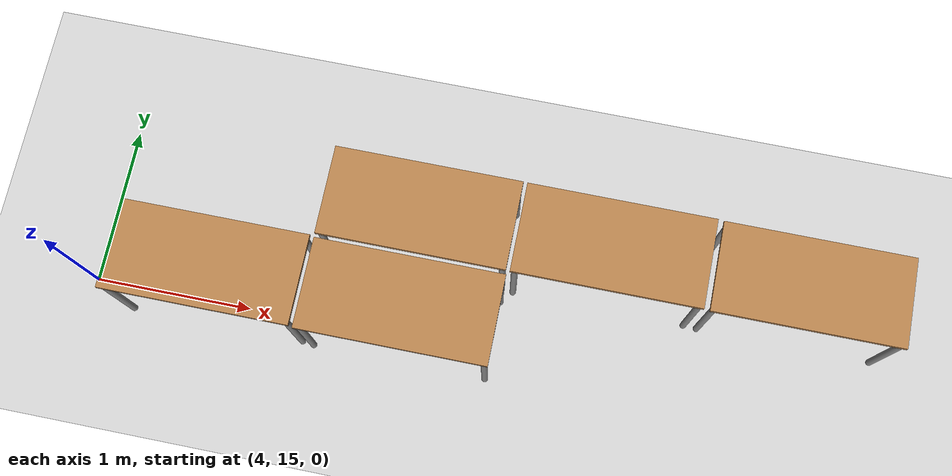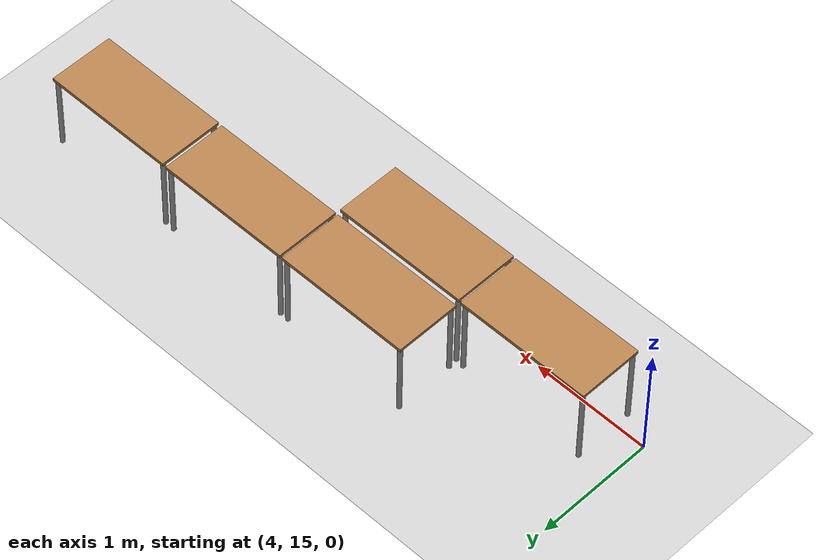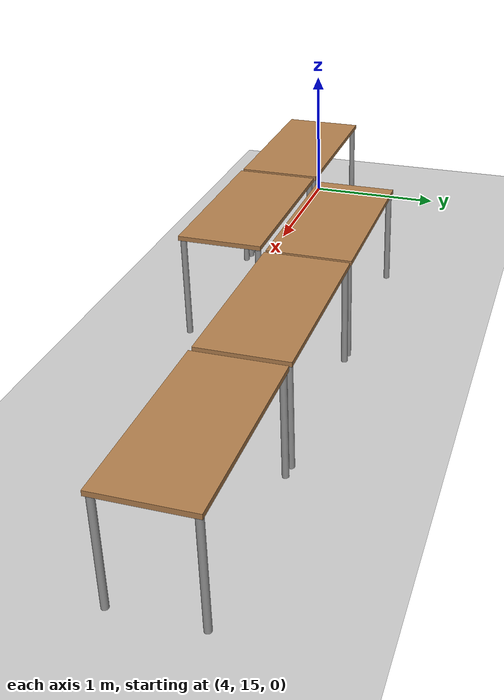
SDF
<sdf version="1.6">
 <world name="default">
  <model name="ground_plane">
   <static>1</static>
   <link name="link">
    <collision name="collision">
     <geometry><plane><normal>0 0 1</normal><size>100 100</size></plane></geometry>
     <surface>
      <contact><collide_bitmask>65535</collide_bitmask></contact>
      <friction><ode><mu>100</mu><mu2>50</mu2></ode></friction>
     </surface>
    </collision>
    <visual name="visual">
     <cast_shadows>0</cast_shadows>
     <geometry><plane><normal>0 0 1</normal><size>100 100</size></plane></geometry>
     <material>
      <script><uri>file://media/materials/scripts/gazebo.material</uri><name>Gazebo/Grey</name></script>
     </material>
    </visual>
   </link>
  </model>
  <model name="table_petite">
   <link name="link">
    <inertial>
     <mass>1</mass>
     <inertia><ixx>1</ixx><ixy>0</ixy><ixz>0</ixz><iyy>1</iyy><iyz>0</iyz><izz>1</izz></inertia>
    </inertial>
    <visual name="back_right_leg">
     <pose>-0.55 -0.25 0.34 0 -0 0</pose>
     <geometry><cylinder><radius>0.02</radius><length>0.68</length></cylinder></geometry>
     <material>
      <script><uri>file://media/materials/scripts/gazebo.material</uri><name>Gazebo/Grey</name></script>
      <shader type="pixel"><normal_map>__default__</normal_map></shader>
      <ambient>0.3 0.3 0.3 1</ambient>
      <diffuse>0.7 0.7 0.7 1</diffuse>
      <specular>0.01 0.01 0.01 1</specular>
      <emissive>0 0 0 1</emissive>
     </material>
    </visual>
    <visual name="front_right_leg">
     <pose>0.55 -0.25 0.34 0 -0 0</pose>
     <geometry><cylinder><radius>0.02</radius><length>0.68</length></cylinder></geometry>
     <material>
      <script><uri>file://media/materials/scripts/gazebo.material</uri><name>Gazebo/Grey</name></script>
      <shader type="pixel"><normal_map>__default__</normal_map></shader>
      <ambient>0.3 0.3 0.3 1</ambient>
      <diffuse>0.7 0.7 0.7 1</diffuse>
      <specular>0.01 0.01 0.01 1</specular>
      <emissive>0 0 0 1</emissive>
     </material>
    </visual>
    <visual name="back_left_leg">
     <pose>-0.55 0.25 0.34 0 -0 0</pose>
     <geometry><cylinder><radius>0.02</radius><length>0.68</length></cylinder></geometry>
     <material>
      <script><uri>file://media/materials/scripts/gazebo.material</uri><name>Gazebo/Grey</name></script>
      <shader type="pixel"><normal_map>__default__</normal_map></shader>
      <ambient>0.3 0.3 0.3 1</ambient>
      <diffuse>0.7 0.7 0.7 1</diffuse>
      <specular>0.01 0.01 0.01 1</specular>
      <emissive>0 0 0 1</emissive>
     </material>
    </visual>
    <visual name="front_left_leg">
     <pose>0.55 0.25 0.34 0 -0 0</pose>
     <geometry><cylinder><radius>0.02</radius><length>0.68</length></cylinder></geometry>
     <material>
      <script><uri>file://media/materials/scripts/gazebo.material</uri><name>Gazebo/Grey</name></script>
      <shader type="pixel"><normal_map>__default__</normal_map></shader>
      <ambient>0.3 0.3 0.3 1</ambient>
      <diffuse>0.7 0.7 0.7 1</diffuse>
      <specular>0.01 0.01 0.01 1</specular>
      <emissive>0 0 0 1</emissive>
     </material>
    </visual>
    <visual name="visual1">
     <pose>0 0 0.7 0 -0 0</pose>
     <geometry><box><size>1.15 0.55 0.03</size></box></geometry>
     <material>
      <script><uri>file://media/materials/scripts/gazebo.material</uri><name>Gazebo/Wood</name></script>
      <shader type="pixel"><normal_map>__default__</normal_map></shader>
      <ambient>1 1 1 1</ambient>
      <diffuse>1 1 1 1</diffuse>
      <specular>0.2 0.2 0.2 1</specular>
      <emissive>0 0 0 1</emissive>
     </material>
    </visual>
    <collision name="surface">
     <pose>0 0 0.7 0 -0 0</pose>
     <geometry><box><size>1.15 0.55 0.03</size></box></geometry>
     <surface>
      <friction>
       <ode><mu>0.6</mu><mu2>0.6</mu2><fdir1>0 0 0</fdir1><slip1>0</slip1><slip2>0</slip2></ode>
       <torsional>
        <coefficient>1</coefficient>
        <patch_radius>0</patch_radius>
        <surface_radius>0</surface_radius>
        <use_patch_radius>1</use_patch_radius>
        <ode><slip>0</slip></ode>
       </torsional>
      </friction>
      <bounce><restitution_coefficient>0</restitution_coefficient><threshold>1e+06</threshold></bounce>
      <contact>
       <collide_without_contact>0</collide_without_contact>
       <collide_without_contact_bitmask>1</collide_without_contact_bitmask>
       <collide_bitmask>1</collide_bitmask>
       <ode>
        <soft_cfm>0</soft_cfm>
        <soft_erp>0.2</soft_erp>
        <kp>1e+13</kp>
        <kd>1</kd>
        <max_vel>0.01</max_vel>
        <min_depth>0</min_depth>
       </ode>
       <bullet>
        <split_impulse>1</split_impulse>
        <split_impulse_penetration_threshold>-0.01</split_impulse_penetration_threshold>
        <soft_cfm>0</soft_cfm>
        <soft_erp>0.2</soft_erp>
        <kp>1e+13</kp>
        <kd>1</kd>
       </bullet>
      </contact>
     </surface>
    </collision>
    <collision name="back_right_leg">
     <pose>-0.55 -0.25 0.34 0 -0 0</pose>
     <geometry><cylinder><radius>0.02</radius><length>0.68</length></cylinder></geometry>
     <surface>
      <friction>
       <ode><mu>1</mu><mu2>1</mu2><fdir1>0 0 0</fdir1><slip1>0</slip1><slip2>0</slip2></ode>
       <torsional>
        <coefficient>1</coefficient>
        <patch_radius>0</patch_radius>
        <surface_radius>0</surface_radius>
        <use_patch_radius>1</use_patch_radius>
        <ode><slip>0</slip></ode>
       </torsional>
      </friction>
      <bounce><restitution_coefficient>0</restitution_coefficient><threshold>1e+06</threshold></bounce>
      <contact>
       <collide_without_contact>0</collide_without_contact>
       <collide_without_contact_bitmask>1</collide_without_contact_bitmask>
       <collide_bitmask>1</collide_bitmask>
       <ode>
        <soft_cfm>0</soft_cfm>
        <soft_erp>0.2</soft_erp>
        <kp>1e+13</kp>
        <kd>1</kd>
        <max_vel>0.01</max_vel>
        <min_depth>0</min_depth>
       </ode>
       <bullet>
        <split_impulse>1</split_impulse>
        <split_impulse_penetration_threshold>-0.01</split_impulse_penetration_threshold>
        <soft_cfm>0</soft_cfm>
        <soft_erp>0.2</soft_erp>
        <kp>1e+13</kp>
        <kd>1</kd>
       </bullet>
      </contact>
     </surface>
    </collision>
    <collision name="back_left_leg">
     <pose>-0.55 0.25 0.34 0 -0 0</pose>
     <geometry><cylinder><radius>0.02</radius><length>0.68</length></cylinder></geometry>
     <surface>
      <friction>
       <ode><mu>1</mu><mu2>1</mu2><fdir1>0 0 0</fdir1><slip1>0</slip1><slip2>0</slip2></ode>
       <torsional>
        <coefficient>1</coefficient>
        <patch_radius>0</patch_radius>
        <surface_radius>0</surface_radius>
        <use_patch_radius>1</use_patch_radius>
        <ode><slip>0</slip></ode>
       </torsional>
      </friction>
      <bounce><restitution_coefficient>0</restitution_coefficient><threshold>1e+06</threshold></bounce>
      <contact>
       <collide_without_contact>0</collide_without_contact>
       <collide_without_contact_bitmask>1</collide_without_contact_bitmask>
       <collide_bitmask>1</collide_bitmask>
       <ode>
        <soft_cfm>0</soft_cfm>
        <soft_erp>0.2</soft_erp>
        <kp>1e+13</kp>
        <kd>1</kd>
        <max_vel>0.01</max_vel>
        <min_depth>0</min_depth>
       </ode>
       <bullet>
        <split_impulse>1</split_impulse>
        <split_impulse_penetration_threshold>-0.01</split_impulse_penetration_threshold>
        <soft_cfm>0</soft_cfm>
        <soft_erp>0.2</soft_erp>
        <kp>1e+13</kp>
        <kd>1</kd>
       </bullet>
      </contact>
     </surface>
    </collision>
    <collision name="front_left_leg">
     <pose>0.55 0.25 0.34 0 -0 0</pose>
     <geometry><cylinder><radius>0.02</radius><length>0.68</length></cylinder></geometry>
     <surface>
      <friction>
       <ode><mu>1</mu><mu2>1</mu2><fdir1>0 0 0</fdir1><slip1>0</slip1><slip2>0</slip2></ode>
       <torsional>
        <coefficient>1</coefficient>
        <patch_radius>0</patch_radius>
        <surface_radius>0</surface_radius>
        <use_patch_radius>1</use_patch_radius>
        <ode><slip>0</slip></ode>
       </torsional>
      </friction>
      <bounce><restitution_coefficient>0</restitution_coefficient><threshold>1e+06</threshold></bounce>
      <contact>
       <collide_without_contact>0</collide_without_contact>
       <collide_without_contact_bitmask>1</collide_without_contact_bitmask>
       <collide_bitmask>1</collide_bitmask>
       <ode>
        <soft_cfm>0</soft_cfm>
        <soft_erp>0.2</soft_erp>
        <kp>1e+13</kp>
        <kd>1</kd>
        <max_vel>0.01</max_vel>
        <min_depth>0</min_depth>
       </ode>
       <bullet>
        <split_impulse>1</split_impulse>
        <split_impulse_penetration_threshold>-0.01</split_impulse_penetration_threshold>
        <soft_cfm>0</soft_cfm>
        <soft_erp>0.2</soft_erp>
        <kp>1e+13</kp>
        <kd>1</kd>
       </bullet>
      </contact>
     </surface>
    </collision>
    <collision name="front_right_leg">
     <pose>0.55 -0.25 0.34 0 -0 0</pose>
     <geometry><cylinder><radius>0.02</radius><length>0.68</length></cylinder></geometry>
     <surface>
      <friction>
       <ode><mu>1</mu><mu2>1</mu2><fdir1>0 0 0</fdir1><slip1>0</slip1><slip2>0</slip2></ode>
       <torsional>
        <coefficient>1</coefficient>
        <patch_radius>0</patch_radius>
        <surface_radius>0</surface_radius>
        <use_patch_radius>1</use_patch_radius>
        <ode><slip>0</slip></ode>
       </torsional>
      </friction>
      <bounce><restitution_coefficient>0</restitution_coefficient><threshold>1e+06</threshold></bounce>
      <contact>
       <collide_without_contact>0</collide_without_contact>
       <collide_without_contact_bitmask>1</collide_without_contact_bitmask>
       <collide_bitmask>1</collide_bitmask>
       <ode>
        <soft_cfm>0</soft_cfm>
        <soft_erp>0.2</soft_erp>
        <kp>1e+13</kp>
        <kd>1</kd>
        <max_vel>0.01</max_vel>
        <min_depth>0</min_depth>
       </ode>
       <bullet>
        <split_impulse>1</split_impulse>
        <split_impulse_penetration_threshold>-0.01</split_impulse_penetration_threshold>
        <soft_cfm>0</soft_cfm>
        <soft_erp>0.2</soft_erp>
        <kp>1e+13</kp>
        <kd>1</kd>
       </bullet>
      </contact>
     </surface>
    </collision>
   </link>
   <static>1</static>
   <pose>8.35062 15.6827 -0.033907 0 -0 3.14159</pose>
  </model>
  <model name="table_petite_clone_0">
   <link name="link">
    <inertial>
     <mass>1</mass>
     <inertia><ixx>1</ixx><ixy>0</ixy><ixz>0</ixz><iyy>1</iyy><iyz>0</iyz><izz>1</izz></inertia>
    </inertial>
    <visual name="back_right_leg">
     <pose>-0.55 -0.25 0.34 0 -0 0</pose>
     <geometry><cylinder><radius>0.02</radius><length>0.68</length></cylinder></geometry>
     <material>
      <script><uri>file://media/materials/scripts/gazebo.material</uri><name>Gazebo/Grey</name></script>
      <shader type="pixel"><normal_map>__default__</normal_map></shader>
      <ambient>0.3 0.3 0.3 1</ambient>
      <diffuse>0.7 0.7 0.7 1</diffuse>
      <specular>0.01 0.01 0.01 1</specular>
      <emissive>0 0 0 1</emissive>
     </material>
    </visual>
    <visual name="front_right_leg">
     <pose>0.55 -0.25 0.34 0 -0 0</pose>
     <geometry><cylinder><radius>0.02</radius><length>0.68</length></cylinder></geometry>
     <material>
      <script><uri>file://media/materials/scripts/gazebo.material</uri><name>Gazebo/Grey</name></script>
      <shader type="pixel"><normal_map>__default__</normal_map></shader>
      <ambient>0.3 0.3 0.3 1</ambient>
      <diffuse>0.7 0.7 0.7 1</diffuse>
      <specular>0.01 0.01 0.01 1</specular>
      <emissive>0 0 0 1</emissive>
     </material>
    </visual>
    <visual name="back_left_leg">
     <pose>-0.55 0.25 0.34 0 -0 0</pose>
     <geometry><cylinder><radius>0.02</radius><length>0.68</length></cylinder></geometry>
     <material>
      <script><uri>file://media/materials/scripts/gazebo.material</uri><name>Gazebo/Grey</name></script>
      <shader type="pixel"><normal_map>__default__</normal_map></shader>
      <ambient>0.3 0.3 0.3 1</ambient>
      <diffuse>0.7 0.7 0.7 1</diffuse>
      <specular>0.01 0.01 0.01 1</specular>
      <emissive>0 0 0 1</emissive>
     </material>
    </visual>
    <visual name="front_left_leg">
     <pose>0.55 0.25 0.34 0 -0 0</pose>
     <geometry><cylinder><radius>0.02</radius><length>0.68</length></cylinder></geometry>
     <material>
      <script><uri>file://media/materials/scripts/gazebo.material</uri><name>Gazebo/Grey</name></script>
      <shader type="pixel"><normal_map>__default__</normal_map></shader>
      <ambient>0.3 0.3 0.3 1</ambient>
      <diffuse>0.7 0.7 0.7 1</diffuse>
      <specular>0.01 0.01 0.01 1</specular>
      <emissive>0 0 0 1</emissive>
     </material>
    </visual>
    <visual name="visual1">
     <pose>0 0 0.7 0 -0 0</pose>
     <geometry><box><size>1.15 0.55 0.03</size></box></geometry>
     <material>
      <script><uri>file://media/materials/scripts/gazebo.material</uri><name>Gazebo/Wood</name></script>
      <shader type="pixel"><normal_map>__default__</normal_map></shader>
      <ambient>1 1 1 1</ambient>
      <diffuse>1 1 1 1</diffuse>
      <specular>0.2 0.2 0.2 1</specular>
      <emissive>0 0 0 1</emissive>
     </material>
    </visual>
    <collision name="surface">
     <pose>0 0 0.7 0 -0 0</pose>
     <geometry><box><size>1.15 0.55 0.03</size></box></geometry>
     <surface>
      <friction>
       <ode><mu>0.6</mu><mu2>0.6</mu2><fdir1>0 0 0</fdir1><slip1>0</slip1><slip2>0</slip2></ode>
       <torsional>
        <coefficient>1</coefficient>
        <patch_radius>0</patch_radius>
        <surface_radius>0</surface_radius>
        <use_patch_radius>1</use_patch_radius>
        <ode><slip>0</slip></ode>
       </torsional>
      </friction>
      <bounce><restitution_coefficient>0</restitution_coefficient><threshold>1e+06</threshold></bounce>
      <contact>
       <collide_without_contact>0</collide_without_contact>
       <collide_without_contact_bitmask>1</collide_without_contact_bitmask>
       <collide_bitmask>1</collide_bitmask>
       <ode>
        <soft_cfm>0</soft_cfm>
        <soft_erp>0.2</soft_erp>
        <kp>1e+13</kp>
        <kd>1</kd>
        <max_vel>0.01</max_vel>
        <min_depth>0</min_depth>
       </ode>
       <bullet>
        <split_impulse>1</split_impulse>
        <split_impulse_penetration_threshold>-0.01</split_impulse_penetration_threshold>
        <soft_cfm>0</soft_cfm>
        <soft_erp>0.2</soft_erp>
        <kp>1e+13</kp>
        <kd>1</kd>
       </bullet>
      </contact>
     </surface>
    </collision>
    <collision name="back_right_leg">
     <pose>-0.55 -0.25 0.34 0 -0 0</pose>
     <geometry><cylinder><radius>0.02</radius><length>0.68</length></cylinder></geometry>
     <surface>
      <friction>
       <ode><mu>1</mu><mu2>1</mu2><fdir1>0 0 0</fdir1><slip1>0</slip1><slip2>0</slip2></ode>
       <torsional>
        <coefficient>1</coefficient>
        <patch_radius>0</patch_radius>
        <surface_radius>0</surface_radius>
        <use_patch_radius>1</use_patch_radius>
        <ode><slip>0</slip></ode>
       </torsional>
      </friction>
      <bounce><restitution_coefficient>0</restitution_coefficient><threshold>1e+06</threshold></bounce>
      <contact>
       <collide_without_contact>0</collide_without_contact>
       <collide_without_contact_bitmask>1</collide_without_contact_bitmask>
       <collide_bitmask>1</collide_bitmask>
       <ode>
        <soft_cfm>0</soft_cfm>
        <soft_erp>0.2</soft_erp>
        <kp>1e+13</kp>
        <kd>1</kd>
        <max_vel>0.01</max_vel>
        <min_depth>0</min_depth>
       </ode>
       <bullet>
        <split_impulse>1</split_impulse>
        <split_impulse_penetration_threshold>-0.01</split_impulse_penetration_threshold>
        <soft_cfm>0</soft_cfm>
        <soft_erp>0.2</soft_erp>
        <kp>1e+13</kp>
        <kd>1</kd>
       </bullet>
      </contact>
     </surface>
    </collision>
    <collision name="back_left_leg">
     <pose>-0.55 0.25 0.34 0 -0 0</pose>
     <geometry><cylinder><radius>0.02</radius><length>0.68</length></cylinder></geometry>
     <surface>
      <friction>
       <ode><mu>1</mu><mu2>1</mu2><fdir1>0 0 0</fdir1><slip1>0</slip1><slip2>0</slip2></ode>
       <torsional>
        <coefficient>1</coefficient>
        <patch_radius>0</patch_radius>
        <surface_radius>0</surface_radius>
        <use_patch_radius>1</use_patch_radius>
        <ode><slip>0</slip></ode>
       </torsional>
      </friction>
      <bounce><restitution_coefficient>0</restitution_coefficient><threshold>1e+06</threshold></bounce>
      <contact>
       <collide_without_contact>0</collide_without_contact>
       <collide_without_contact_bitmask>1</collide_without_contact_bitmask>
       <collide_bitmask>1</collide_bitmask>
       <ode>
        <soft_cfm>0</soft_cfm>
        <soft_erp>0.2</soft_erp>
        <kp>1e+13</kp>
        <kd>1</kd>
        <max_vel>0.01</max_vel>
        <min_depth>0</min_depth>
       </ode>
       <bullet>
        <split_impulse>1</split_impulse>
        <split_impulse_penetration_threshold>-0.01</split_impulse_penetration_threshold>
        <soft_cfm>0</soft_cfm>
        <soft_erp>0.2</soft_erp>
        <kp>1e+13</kp>
        <kd>1</kd>
       </bullet>
      </contact>
     </surface>
    </collision>
    <collision name="front_left_leg">
     <pose>0.55 0.25 0.34 0 -0 0</pose>
     <geometry><cylinder><radius>0.02</radius><length>0.68</length></cylinder></geometry>
     <surface>
      <friction>
       <ode><mu>1</mu><mu2>1</mu2><fdir1>0 0 0</fdir1><slip1>0</slip1><slip2>0</slip2></ode>
       <torsional>
        <coefficient>1</coefficient>
        <patch_radius>0</patch_radius>
        <surface_radius>0</surface_radius>
        <use_patch_radius>1</use_patch_radius>
        <ode><slip>0</slip></ode>
       </torsional>
      </friction>
      <bounce><restitution_coefficient>0</restitution_coefficient><threshold>1e+06</threshold></bounce>
      <contact>
       <collide_without_contact>0</collide_without_contact>
       <collide_without_contact_bitmask>1</collide_without_contact_bitmask>
       <collide_bitmask>1</collide_bitmask>
       <ode>
        <soft_cfm>0</soft_cfm>
        <soft_erp>0.2</soft_erp>
        <kp>1e+13</kp>
        <kd>1</kd>
        <max_vel>0.01</max_vel>
        <min_depth>0</min_depth>
       </ode>
       <bullet>
        <split_impulse>1</split_impulse>
        <split_impulse_penetration_threshold>-0.01</split_impulse_penetration_threshold>
        <soft_cfm>0</soft_cfm>
        <soft_erp>0.2</soft_erp>
        <kp>1e+13</kp>
        <kd>1</kd>
       </bullet>
      </contact>
     </surface>
    </collision>
    <collision name="front_right_leg">
     <pose>0.55 -0.25 0.34 0 -0 0</pose>
     <geometry><cylinder><radius>0.02</radius><length>0.68</length></cylinder></geometry>
     <surface>
      <friction>
       <ode><mu>1</mu><mu2>1</mu2><fdir1>0 0 0</fdir1><slip1>0</slip1><slip2>0</slip2></ode>
       <torsional>
        <coefficient>1</coefficient>
        <patch_radius>0</patch_radius>
        <surface_radius>0</surface_radius>
        <use_patch_radius>1</use_patch_radius>
        <ode><slip>0</slip></ode>
       </torsional>
      </friction>
      <bounce><restitution_coefficient>0</restitution_coefficient><threshold>1e+06</threshold></bounce>
      <contact>
       <collide_without_contact>0</collide_without_contact>
       <collide_without_contact_bitmask>1</collide_without_contact_bitmask>
       <collide_bitmask>1</collide_bitmask>
       <ode>
        <soft_cfm>0</soft_cfm>
        <soft_erp>0.2</soft_erp>
        <kp>1e+13</kp>
        <kd>1</kd>
        <max_vel>0.01</max_vel>
        <min_depth>0</min_depth>
       </ode>
       <bullet>
        <split_impulse>1</split_impulse>
        <split_impulse_penetration_threshold>-0.01</split_impulse_penetration_threshold>
        <soft_cfm>0</soft_cfm>
        <soft_erp>0.2</soft_erp>
        <kp>1e+13</kp>
        <kd>1</kd>
       </bullet>
      </contact>
     </surface>
    </collision>
   </link>
   <static>1</static>
   <pose>7.16553 15.6873 -0.033907 0 -0 3.14159</pose>
  </model>
  <model name="table_petite_clone_0_clone">
   <link name="link">
    <inertial>
     <mass>1</mass>
     <inertia><ixx>1</ixx><ixy>0</ixy><ixz>0</ixz><iyy>1</iyy><iyz>0</iyz><izz>1</izz></inertia>
    </inertial>
    <visual name="back_right_leg">
     <pose>-0.55 -0.25 0.34 0 -0 0</pose>
     <geometry><cylinder><radius>0.02</radius><length>0.68</length></cylinder></geometry>
     <material>
      <script><uri>file://media/materials/scripts/gazebo.material</uri><name>Gazebo/Grey</name></script>
      <shader type="pixel"><normal_map>__default__</normal_map></shader>
      <ambient>0.3 0.3 0.3 1</ambient>
      <diffuse>0.7 0.7 0.7 1</diffuse>
      <specular>0.01 0.01 0.01 1</specular>
      <emissive>0 0 0 1</emissive>
     </material>
    </visual>
    <visual name="front_right_leg">
     <pose>0.55 -0.25 0.34 0 -0 0</pose>
     <geometry><cylinder><radius>0.02</radius><length>0.68</length></cylinder></geometry>
     <material>
      <script><uri>file://media/materials/scripts/gazebo.material</uri><name>Gazebo/Grey</name></script>
      <shader type="pixel"><normal_map>__default__</normal_map></shader>
      <ambient>0.3 0.3 0.3 1</ambient>
      <diffuse>0.7 0.7 0.7 1</diffuse>
      <specular>0.01 0.01 0.01 1</specular>
      <emissive>0 0 0 1</emissive>
     </material>
    </visual>
    <visual name="back_left_leg">
     <pose>-0.55 0.25 0.34 0 -0 0</pose>
     <geometry><cylinder><radius>0.02</radius><length>0.68</length></cylinder></geometry>
     <material>
      <script><uri>file://media/materials/scripts/gazebo.material</uri><name>Gazebo/Grey</name></script>
      <shader type="pixel"><normal_map>__default__</normal_map></shader>
      <ambient>0.3 0.3 0.3 1</ambient>
      <diffuse>0.7 0.7 0.7 1</diffuse>
      <specular>0.01 0.01 0.01 1</specular>
      <emissive>0 0 0 1</emissive>
     </material>
    </visual>
    <visual name="front_left_leg">
     <pose>0.55 0.25 0.34 0 -0 0</pose>
     <geometry><cylinder><radius>0.02</radius><length>0.68</length></cylinder></geometry>
     <material>
      <script><uri>file://media/materials/scripts/gazebo.material</uri><name>Gazebo/Grey</name></script>
      <shader type="pixel"><normal_map>__default__</normal_map></shader>
      <ambient>0.3 0.3 0.3 1</ambient>
      <diffuse>0.7 0.7 0.7 1</diffuse>
      <specular>0.01 0.01 0.01 1</specular>
      <emissive>0 0 0 1</emissive>
     </material>
    </visual>
    <visual name="visual1">
     <pose>0 0 0.7 0 -0 0</pose>
     <geometry><box><size>1.15 0.55 0.03</size></box></geometry>
     <material>
      <script><uri>file://media/materials/scripts/gazebo.material</uri><name>Gazebo/Wood</name></script>
      <shader type="pixel"><normal_map>__default__</normal_map></shader>
      <ambient>1 1 1 1</ambient>
      <diffuse>1 1 1 1</diffuse>
      <specular>0.2 0.2 0.2 1</specular>
      <emissive>0 0 0 1</emissive>
     </material>
    </visual>
    <collision name="surface">
     <pose>0 0 0.7 0 -0 0</pose>
     <geometry><box><size>1.15 0.55 0.03</size></box></geometry>
     <surface>
      <friction>
       <ode><mu>0.6</mu><mu2>0.6</mu2><fdir1>0 0 0</fdir1><slip1>0</slip1><slip2>0</slip2></ode>
       <torsional>
        <coefficient>1</coefficient>
        <patch_radius>0</patch_radius>
        <surface_radius>0</surface_radius>
        <use_patch_radius>1</use_patch_radius>
        <ode><slip>0</slip></ode>
       </torsional>
      </friction>
      <bounce><restitution_coefficient>0</restitution_coefficient><threshold>1e+06</threshold></bounce>
      <contact>
       <collide_without_contact>0</collide_without_contact>
       <collide_without_contact_bitmask>1</collide_without_contact_bitmask>
       <collide_bitmask>1</collide_bitmask>
       <ode>
        <soft_cfm>0</soft_cfm>
        <soft_erp>0.2</soft_erp>
        <kp>1e+13</kp>
        <kd>1</kd>
        <max_vel>0.01</max_vel>
        <min_depth>0</min_depth>
       </ode>
       <bullet>
        <split_impulse>1</split_impulse>
        <split_impulse_penetration_threshold>-0.01</split_impulse_penetration_threshold>
        <soft_cfm>0</soft_cfm>
        <soft_erp>0.2</soft_erp>
        <kp>1e+13</kp>
        <kd>1</kd>
       </bullet>
      </contact>
     </surface>
    </collision>
    <collision name="back_right_leg">
     <pose>-0.55 -0.25 0.34 0 -0 0</pose>
     <geometry><cylinder><radius>0.02</radius><length>0.68</length></cylinder></geometry>
     <surface>
      <friction>
       <ode><mu>1</mu><mu2>1</mu2><fdir1>0 0 0</fdir1><slip1>0</slip1><slip2>0</slip2></ode>
       <torsional>
        <coefficient>1</coefficient>
        <patch_radius>0</patch_radius>
        <surface_radius>0</surface_radius>
        <use_patch_radius>1</use_patch_radius>
        <ode><slip>0</slip></ode>
       </torsional>
      </friction>
      <bounce><restitution_coefficient>0</restitution_coefficient><threshold>1e+06</threshold></bounce>
      <contact>
       <collide_without_contact>0</collide_without_contact>
       <collide_without_contact_bitmask>1</collide_without_contact_bitmask>
       <collide_bitmask>1</collide_bitmask>
       <ode>
        <soft_cfm>0</soft_cfm>
        <soft_erp>0.2</soft_erp>
        <kp>1e+13</kp>
        <kd>1</kd>
        <max_vel>0.01</max_vel>
        <min_depth>0</min_depth>
       </ode>
       <bullet>
        <split_impulse>1</split_impulse>
        <split_impulse_penetration_threshold>-0.01</split_impulse_penetration_threshold>
        <soft_cfm>0</soft_cfm>
        <soft_erp>0.2</soft_erp>
        <kp>1e+13</kp>
        <kd>1</kd>
       </bullet>
      </contact>
     </surface>
    </collision>
    <collision name="back_left_leg">
     <pose>-0.55 0.25 0.34 0 -0 0</pose>
     <geometry><cylinder><radius>0.02</radius><length>0.68</length></cylinder></geometry>
     <surface>
      <friction>
       <ode><mu>1</mu><mu2>1</mu2><fdir1>0 0 0</fdir1><slip1>0</slip1><slip2>0</slip2></ode>
       <torsional>
        <coefficient>1</coefficient>
        <patch_radius>0</patch_radius>
        <surface_radius>0</surface_radius>
        <use_patch_radius>1</use_patch_radius>
        <ode><slip>0</slip></ode>
       </torsional>
      </friction>
      <bounce><restitution_coefficient>0</restitution_coefficient><threshold>1e+06</threshold></bounce>
      <contact>
       <collide_without_contact>0</collide_without_contact>
       <collide_without_contact_bitmask>1</collide_without_contact_bitmask>
       <collide_bitmask>1</collide_bitmask>
       <ode>
        <soft_cfm>0</soft_cfm>
        <soft_erp>0.2</soft_erp>
        <kp>1e+13</kp>
        <kd>1</kd>
        <max_vel>0.01</max_vel>
        <min_depth>0</min_depth>
       </ode>
       <bullet>
        <split_impulse>1</split_impulse>
        <split_impulse_penetration_threshold>-0.01</split_impulse_penetration_threshold>
        <soft_cfm>0</soft_cfm>
        <soft_erp>0.2</soft_erp>
        <kp>1e+13</kp>
        <kd>1</kd>
       </bullet>
      </contact>
     </surface>
    </collision>
    <collision name="front_left_leg">
     <pose>0.55 0.25 0.34 0 -0 0</pose>
     <geometry><cylinder><radius>0.02</radius><length>0.68</length></cylinder></geometry>
     <surface>
      <friction>
       <ode><mu>1</mu><mu2>1</mu2><fdir1>0 0 0</fdir1><slip1>0</slip1><slip2>0</slip2></ode>
       <torsional>
        <coefficient>1</coefficient>
        <patch_radius>0</patch_radius>
        <surface_radius>0</surface_radius>
        <use_patch_radius>1</use_patch_radius>
        <ode><slip>0</slip></ode>
       </torsional>
      </friction>
      <bounce><restitution_coefficient>0</restitution_coefficient><threshold>1e+06</threshold></bounce>
      <contact>
       <collide_without_contact>0</collide_without_contact>
       <collide_without_contact_bitmask>1</collide_without_contact_bitmask>
       <collide_bitmask>1</collide_bitmask>
       <ode>
        <soft_cfm>0</soft_cfm>
        <soft_erp>0.2</soft_erp>
        <kp>1e+13</kp>
        <kd>1</kd>
        <max_vel>0.01</max_vel>
        <min_depth>0</min_depth>
       </ode>
       <bullet>
        <split_impulse>1</split_impulse>
        <split_impulse_penetration_threshold>-0.01</split_impulse_penetration_threshold>
        <soft_cfm>0</soft_cfm>
        <soft_erp>0.2</soft_erp>
        <kp>1e+13</kp>
        <kd>1</kd>
       </bullet>
      </contact>
     </surface>
    </collision>
    <collision name="front_right_leg">
     <pose>0.55 -0.25 0.34 0 -0 0</pose>
     <geometry><cylinder><radius>0.02</radius><length>0.68</length></cylinder></geometry>
     <surface>
      <friction>
       <ode><mu>1</mu><mu2>1</mu2><fdir1>0 0 0</fdir1><slip1>0</slip1><slip2>0</slip2></ode>
       <torsional>
        <coefficient>1</coefficient>
        <patch_radius>0</patch_radius>
        <surface_radius>0</surface_radius>
        <use_patch_radius>1</use_patch_radius>
        <ode><slip>0</slip></ode>
       </torsional>
      </friction>
      <bounce><restitution_coefficient>0</restitution_coefficient><threshold>1e+06</threshold></bounce>
      <contact>
       <collide_without_contact>0</collide_without_contact>
       <collide_without_contact_bitmask>1</collide_without_contact_bitmask>
       <collide_bitmask>1</collide_bitmask>
       <ode>
        <soft_cfm>0</soft_cfm>
        <soft_erp>0.2</soft_erp>
        <kp>1e+13</kp>
        <kd>1</kd>
        <max_vel>0.01</max_vel>
        <min_depth>0</min_depth>
       </ode>
       <bullet>
        <split_impulse>1</split_impulse>
        <split_impulse_penetration_threshold>-0.01</split_impulse_penetration_threshold>
        <soft_cfm>0</soft_cfm>
        <soft_erp>0.2</soft_erp>
        <kp>1e+13</kp>
        <kd>1</kd>
       </bullet>
      </contact>
     </surface>
    </collision>
   </link>
   <static>1</static>
   <pose>5.99154 15.6894 -0.033907 0 -0 3.14159</pose>
  </model>
  <model name="table_petite_clone_0_clone_clone_3">
   <link name="link">
    <inertial>
     <mass>1</mass>
     <inertia><ixx>1</ixx><ixy>0</ixy><ixz>0</ixz><iyy>1</iyy><iyz>0</iyz><izz>1</izz></inertia>
    </inertial>
    <visual name="back_right_leg">
     <pose>-0.55 -0.25 0.34 0 -0 0</pose>
     <geometry><cylinder><radius>0.02</radius><length>0.68</length></cylinder></geometry>
     <material>
      <script><uri>file://media/materials/scripts/gazebo.material</uri><name>Gazebo/Grey</name></script>
      <shader type="pixel"><normal_map>__default__</normal_map></shader>
      <ambient>0.3 0.3 0.3 1</ambient>
      <diffuse>0.7 0.7 0.7 1</diffuse>
      <specular>0.01 0.01 0.01 1</specular>
      <emissive>0 0 0 1</emissive>
     </material>
    </visual>
    <visual name="front_right_leg">
     <pose>0.55 -0.25 0.34 0 -0 0</pose>
     <geometry><cylinder><radius>0.02</radius><length>0.68</length></cylinder></geometry>
     <material>
      <script><uri>file://media/materials/scripts/gazebo.material</uri><name>Gazebo/Grey</name></script>
      <shader type="pixel"><normal_map>__default__</normal_map></shader>
      <ambient>0.3 0.3 0.3 1</ambient>
      <diffuse>0.7 0.7 0.7 1</diffuse>
      <specular>0.01 0.01 0.01 1</specular>
      <emissive>0 0 0 1</emissive>
     </material>
    </visual>
    <visual name="back_left_leg">
     <pose>-0.55 0.25 0.34 0 -0 0</pose>
     <geometry><cylinder><radius>0.02</radius><length>0.68</length></cylinder></geometry>
     <material>
      <script><uri>file://media/materials/scripts/gazebo.material</uri><name>Gazebo/Grey</name></script>
      <shader type="pixel"><normal_map>__default__</normal_map></shader>
      <ambient>0.3 0.3 0.3 1</ambient>
      <diffuse>0.7 0.7 0.7 1</diffuse>
      <specular>0.01 0.01 0.01 1</specular>
      <emissive>0 0 0 1</emissive>
     </material>
    </visual>
    <visual name="front_left_leg">
     <pose>0.55 0.25 0.34 0 -0 0</pose>
     <geometry><cylinder><radius>0.02</radius><length>0.68</length></cylinder></geometry>
     <material>
      <script><uri>file://media/materials/scripts/gazebo.material</uri><name>Gazebo/Grey</name></script>
      <shader type="pixel"><normal_map>__default__</normal_map></shader>
      <ambient>0.3 0.3 0.3 1</ambient>
      <diffuse>0.7 0.7 0.7 1</diffuse>
      <specular>0.01 0.01 0.01 1</specular>
      <emissive>0 0 0 1</emissive>
     </material>
    </visual>
    <visual name="visual1">
     <pose>0 0 0.7 0 -0 0</pose>
     <geometry><box><size>1.15 0.55 0.03</size></box></geometry>
     <material>
      <script><uri>file://media/materials/scripts/gazebo.material</uri><name>Gazebo/Wood</name></script>
      <shader type="pixel"><normal_map>__default__</normal_map></shader>
      <ambient>1 1 1 1</ambient>
      <diffuse>1 1 1 1</diffuse>
      <specular>0.2 0.2 0.2 1</specular>
      <emissive>0 0 0 1</emissive>
     </material>
    </visual>
    <collision name="surface">
     <pose>0 0 0.7 0 -0 0</pose>
     <geometry><box><size>1.15 0.55 0.03</size></box></geometry>
     <surface>
      <friction>
       <ode><mu>0.6</mu><mu2>0.6</mu2><fdir1>0 0 0</fdir1><slip1>0</slip1><slip2>0</slip2></ode>
       <torsional>
        <coefficient>1</coefficient>
        <patch_radius>0</patch_radius>
        <surface_radius>0</surface_radius>
        <use_patch_radius>1</use_patch_radius>
        <ode><slip>0</slip></ode>
       </torsional>
      </friction>
      <bounce><restitution_coefficient>0</restitution_coefficient><threshold>1e+06</threshold></bounce>
      <contact>
       <collide_without_contact>0</collide_without_contact>
       <collide_without_contact_bitmask>1</collide_without_contact_bitmask>
       <collide_bitmask>1</collide_bitmask>
       <ode>
        <soft_cfm>0</soft_cfm>
        <soft_erp>0.2</soft_erp>
        <kp>1e+13</kp>
        <kd>1</kd>
        <max_vel>0.01</max_vel>
        <min_depth>0</min_depth>
       </ode>
       <bullet>
        <split_impulse>1</split_impulse>
        <split_impulse_penetration_threshold>-0.01</split_impulse_penetration_threshold>
        <soft_cfm>0</soft_cfm>
        <soft_erp>0.2</soft_erp>
        <kp>1e+13</kp>
        <kd>1</kd>
       </bullet>
      </contact>
     </surface>
    </collision>
    <collision name="back_right_leg">
     <pose>-0.55 -0.25 0.34 0 -0 0</pose>
     <geometry><cylinder><radius>0.02</radius><length>0.68</length></cylinder></geometry>
     <surface>
      <friction>
       <ode><mu>1</mu><mu2>1</mu2><fdir1>0 0 0</fdir1><slip1>0</slip1><slip2>0</slip2></ode>
       <torsional>
        <coefficient>1</coefficient>
        <patch_radius>0</patch_radius>
        <surface_radius>0</surface_radius>
        <use_patch_radius>1</use_patch_radius>
        <ode><slip>0</slip></ode>
       </torsional>
      </friction>
      <bounce><restitution_coefficient>0</restitution_coefficient><threshold>1e+06</threshold></bounce>
      <contact>
       <collide_without_contact>0</collide_without_contact>
       <collide_without_contact_bitmask>1</collide_without_contact_bitmask>
       <collide_bitmask>1</collide_bitmask>
       <ode>
        <soft_cfm>0</soft_cfm>
        <soft_erp>0.2</soft_erp>
        <kp>1e+13</kp>
        <kd>1</kd>
        <max_vel>0.01</max_vel>
        <min_depth>0</min_depth>
       </ode>
       <bullet>
        <split_impulse>1</split_impulse>
        <split_impulse_penetration_threshold>-0.01</split_impulse_penetration_threshold>
        <soft_cfm>0</soft_cfm>
        <soft_erp>0.2</soft_erp>
        <kp>1e+13</kp>
        <kd>1</kd>
       </bullet>
      </contact>
     </surface>
    </collision>
    <collision name="back_left_leg">
     <pose>-0.55 0.25 0.34 0 -0 0</pose>
     <geometry><cylinder><radius>0.02</radius><length>0.68</length></cylinder></geometry>
     <surface>
      <friction>
       <ode><mu>1</mu><mu2>1</mu2><fdir1>0 0 0</fdir1><slip1>0</slip1><slip2>0</slip2></ode>
       <torsional>
        <coefficient>1</coefficient>
        <patch_radius>0</patch_radius>
        <surface_radius>0</surface_radius>
        <use_patch_radius>1</use_patch_radius>
        <ode><slip>0</slip></ode>
       </torsional>
      </friction>
      <bounce><restitution_coefficient>0</restitution_coefficient><threshold>1e+06</threshold></bounce>
      <contact>
       <collide_without_contact>0</collide_without_contact>
       <collide_without_contact_bitmask>1</collide_without_contact_bitmask>
       <collide_bitmask>1</collide_bitmask>
       <ode>
        <soft_cfm>0</soft_cfm>
        <soft_erp>0.2</soft_erp>
        <kp>1e+13</kp>
        <kd>1</kd>
        <max_vel>0.01</max_vel>
        <min_depth>0</min_depth>
       </ode>
       <bullet>
        <split_impulse>1</split_impulse>
        <split_impulse_penetration_threshold>-0.01</split_impulse_penetration_threshold>
        <soft_cfm>0</soft_cfm>
        <soft_erp>0.2</soft_erp>
        <kp>1e+13</kp>
        <kd>1</kd>
       </bullet>
      </contact>
     </surface>
    </collision>
    <collision name="front_left_leg">
     <pose>0.55 0.25 0.34 0 -0 0</pose>
     <geometry><cylinder><radius>0.02</radius><length>0.68</length></cylinder></geometry>
     <surface>
      <friction>
       <ode><mu>1</mu><mu2>1</mu2><fdir1>0 0 0</fdir1><slip1>0</slip1><slip2>0</slip2></ode>
       <torsional>
        <coefficient>1</coefficient>
        <patch_radius>0</patch_radius>
        <surface_radius>0</surface_radius>
        <use_patch_radius>1</use_patch_radius>
        <ode><slip>0</slip></ode>
       </torsional>
      </friction>
      <bounce><restitution_coefficient>0</restitution_coefficient><threshold>1e+06</threshold></bounce>
      <contact>
       <collide_without_contact>0</collide_without_contact>
       <collide_without_contact_bitmask>1</collide_without_contact_bitmask>
       <collide_bitmask>1</collide_bitmask>
       <ode>
        <soft_cfm>0</soft_cfm>
        <soft_erp>0.2</soft_erp>
        <kp>1e+13</kp>
        <kd>1</kd>
        <max_vel>0.01</max_vel>
        <min_depth>0</min_depth>
       </ode>
       <bullet>
        <split_impulse>1</split_impulse>
        <split_impulse_penetration_threshold>-0.01</split_impulse_penetration_threshold>
        <soft_cfm>0</soft_cfm>
        <soft_erp>0.2</soft_erp>
        <kp>1e+13</kp>
        <kd>1</kd>
       </bullet>
      </contact>
     </surface>
    </collision>
    <collision name="front_right_leg">
     <pose>0.55 -0.25 0.34 0 -0 0</pose>
     <geometry><cylinder><radius>0.02</radius><length>0.68</length></cylinder></geometry>
     <surface>
      <friction>
       <ode><mu>1</mu><mu2>1</mu2><fdir1>0 0 0</fdir1><slip1>0</slip1><slip2>0</slip2></ode>
       <torsional>
        <coefficient>1</coefficient>
        <patch_radius>0</patch_radius>
        <surface_radius>0</surface_radius>
        <use_patch_radius>1</use_patch_radius>
        <ode><slip>0</slip></ode>
       </torsional>
      </friction>
      <bounce><restitution_coefficient>0</restitution_coefficient><threshold>1e+06</threshold></bounce>
      <contact>
       <collide_without_contact>0</collide_without_contact>
       <collide_without_contact_bitmask>1</collide_without_contact_bitmask>
       <collide_bitmask>1</collide_bitmask>
       <ode>
        <soft_cfm>0</soft_cfm>
        <soft_erp>0.2</soft_erp>
        <kp>1e+13</kp>
        <kd>1</kd>
        <max_vel>0.01</max_vel>
        <min_depth>0</min_depth>
       </ode>
       <bullet>
        <split_impulse>1</split_impulse>
        <split_impulse_penetration_threshold>-0.01</split_impulse_penetration_threshold>
        <soft_cfm>0</soft_cfm>
        <soft_erp>0.2</soft_erp>
        <kp>1e+13</kp>
        <kd>1</kd>
       </bullet>
      </contact>
     </surface>
    </collision>
   </link>
   <static>1</static>
   <pose>5.99939 15.1075 -0.008714 0 -0 3.14159</pose>
  </model>
  <model name="table_petite_clone_0_clone_clone_4">
   <link name="link">
    <inertial>
     <mass>1</mass>
     <inertia><ixx>1</ixx><ixy>0</ixy><ixz>0</ixz><iyy>1</iyy><iyz>0</iyz><izz>1</izz></inertia>
    </inertial>
    <visual name="back_right_leg">
     <pose>-0.55 -0.25 0.34 0 -0 0</pose>
     <geometry><cylinder><radius>0.02</radius><length>0.68</length></cylinder></geometry>
     <material>
      <script><uri>file://media/materials/scripts/gazebo.material</uri><name>Gazebo/Grey</name></script>
      <shader type="pixel"><normal_map>__default__</normal_map></shader>
      <ambient>0.3 0.3 0.3 1</ambient>
      <diffuse>0.7 0.7 0.7 1</diffuse>
      <specular>0.01 0.01 0.01 1</specular>
      <emissive>0 0 0 1</emissive>
     </material>
    </visual>
    <visual name="front_right_leg">
     <pose>0.55 -0.25 0.34 0 -0 0</pose>
     <geometry><cylinder><radius>0.02</radius><length>0.68</length></cylinder></geometry>
     <material>
      <script><uri>file://media/materials/scripts/gazebo.material</uri><name>Gazebo/Grey</name></script>
      <shader type="pixel"><normal_map>__default__</normal_map></shader>
      <ambient>0.3 0.3 0.3 1</ambient>
      <diffuse>0.7 0.7 0.7 1</diffuse>
      <specular>0.01 0.01 0.01 1</specular>
      <emissive>0 0 0 1</emissive>
     </material>
    </visual>
    <visual name="back_left_leg">
     <pose>-0.55 0.25 0.34 0 -0 0</pose>
     <geometry><cylinder><radius>0.02</radius><length>0.68</length></cylinder></geometry>
     <material>
      <script><uri>file://media/materials/scripts/gazebo.material</uri><name>Gazebo/Grey</name></script>
      <shader type="pixel"><normal_map>__default__</normal_map></shader>
      <ambient>0.3 0.3 0.3 1</ambient>
      <diffuse>0.7 0.7 0.7 1</diffuse>
      <specular>0.01 0.01 0.01 1</specular>
      <emissive>0 0 0 1</emissive>
     </material>
    </visual>
    <visual name="front_left_leg">
     <pose>0.55 0.25 0.34 0 -0 0</pose>
     <geometry><cylinder><radius>0.02</radius><length>0.68</length></cylinder></geometry>
     <material>
      <script><uri>file://media/materials/scripts/gazebo.material</uri><name>Gazebo/Grey</name></script>
      <shader type="pixel"><normal_map>__default__</normal_map></shader>
      <ambient>0.3 0.3 0.3 1</ambient>
      <diffuse>0.7 0.7 0.7 1</diffuse>
      <specular>0.01 0.01 0.01 1</specular>
      <emissive>0 0 0 1</emissive>
     </material>
    </visual>
    <visual name="visual1">
     <pose>0 0 0.7 0 -0 0</pose>
     <geometry><box><size>1.15 0.55 0.03</size></box></geometry>
     <material>
      <script><uri>file://media/materials/scripts/gazebo.material</uri><name>Gazebo/Wood</name></script>
      <shader type="pixel"><normal_map>__default__</normal_map></shader>
      <ambient>1 1 1 1</ambient>
      <diffuse>1 1 1 1</diffuse>
      <specular>0.2 0.2 0.2 1</specular>
      <emissive>0 0 0 1</emissive>
     </material>
    </visual>
    <collision name="surface">
     <pose>0 0 0.7 0 -0 0</pose>
     <geometry><box><size>1.15 0.55 0.03</size></box></geometry>
     <surface>
      <friction>
       <ode><mu>0.6</mu><mu2>0.6</mu2><fdir1>0 0 0</fdir1><slip1>0</slip1><slip2>0</slip2></ode>
       <torsional>
        <coefficient>1</coefficient>
        <patch_radius>0</patch_radius>
        <surface_radius>0</surface_radius>
        <use_patch_radius>1</use_patch_radius>
        <ode><slip>0</slip></ode>
       </torsional>
      </friction>
      <bounce><restitution_coefficient>0</restitution_coefficient><threshold>1e+06</threshold></bounce>
      <contact>
       <collide_without_contact>0</collide_without_contact>
       <collide_without_contact_bitmask>1</collide_without_contact_bitmask>
       <collide_bitmask>1</collide_bitmask>
       <ode>
        <soft_cfm>0</soft_cfm>
        <soft_erp>0.2</soft_erp>
        <kp>1e+13</kp>
        <kd>1</kd>
        <max_vel>0.01</max_vel>
        <min_depth>0</min_depth>
       </ode>
       <bullet>
        <split_impulse>1</split_impulse>
        <split_impulse_penetration_threshold>-0.01</split_impulse_penetration_threshold>
        <soft_cfm>0</soft_cfm>
        <soft_erp>0.2</soft_erp>
        <kp>1e+13</kp>
        <kd>1</kd>
       </bullet>
      </contact>
     </surface>
    </collision>
    <collision name="back_right_leg">
     <pose>-0.55 -0.25 0.34 0 -0 0</pose>
     <geometry><cylinder><radius>0.02</radius><length>0.68</length></cylinder></geometry>
     <surface>
      <friction>
       <ode><mu>1</mu><mu2>1</mu2><fdir1>0 0 0</fdir1><slip1>0</slip1><slip2>0</slip2></ode>
       <torsional>
        <coefficient>1</coefficient>
        <patch_radius>0</patch_radius>
        <surface_radius>0</surface_radius>
        <use_patch_radius>1</use_patch_radius>
        <ode><slip>0</slip></ode>
       </torsional>
      </friction>
      <bounce><restitution_coefficient>0</restitution_coefficient><threshold>1e+06</threshold></bounce>
      <contact>
       <collide_without_contact>0</collide_without_contact>
       <collide_without_contact_bitmask>1</collide_without_contact_bitmask>
       <collide_bitmask>1</collide_bitmask>
       <ode>
        <soft_cfm>0</soft_cfm>
        <soft_erp>0.2</soft_erp>
        <kp>1e+13</kp>
        <kd>1</kd>
        <max_vel>0.01</max_vel>
        <min_depth>0</min_depth>
       </ode>
       <bullet>
        <split_impulse>1</split_impulse>
        <split_impulse_penetration_threshold>-0.01</split_impulse_penetration_threshold>
        <soft_cfm>0</soft_cfm>
        <soft_erp>0.2</soft_erp>
        <kp>1e+13</kp>
        <kd>1</kd>
       </bullet>
      </contact>
     </surface>
    </collision>
    <collision name="back_left_leg">
     <pose>-0.55 0.25 0.34 0 -0 0</pose>
     <geometry><cylinder><radius>0.02</radius><length>0.68</length></cylinder></geometry>
     <surface>
      <friction>
       <ode><mu>1</mu><mu2>1</mu2><fdir1>0 0 0</fdir1><slip1>0</slip1><slip2>0</slip2></ode>
       <torsional>
        <coefficient>1</coefficient>
        <patch_radius>0</patch_radius>
        <surface_radius>0</surface_radius>
        <use_patch_radius>1</use_patch_radius>
        <ode><slip>0</slip></ode>
       </torsional>
      </friction>
      <bounce><restitution_coefficient>0</restitution_coefficient><threshold>1e+06</threshold></bounce>
      <contact>
       <collide_without_contact>0</collide_without_contact>
       <collide_without_contact_bitmask>1</collide_without_contact_bitmask>
       <collide_bitmask>1</collide_bitmask>
       <ode>
        <soft_cfm>0</soft_cfm>
        <soft_erp>0.2</soft_erp>
        <kp>1e+13</kp>
        <kd>1</kd>
        <max_vel>0.01</max_vel>
        <min_depth>0</min_depth>
       </ode>
       <bullet>
        <split_impulse>1</split_impulse>
        <split_impulse_penetration_threshold>-0.01</split_impulse_penetration_threshold>
        <soft_cfm>0</soft_cfm>
        <soft_erp>0.2</soft_erp>
        <kp>1e+13</kp>
        <kd>1</kd>
       </bullet>
      </contact>
     </surface>
    </collision>
    <collision name="front_left_leg">
     <pose>0.55 0.25 0.34 0 -0 0</pose>
     <geometry><cylinder><radius>0.02</radius><length>0.68</length></cylinder></geometry>
     <surface>
      <friction>
       <ode><mu>1</mu><mu2>1</mu2><fdir1>0 0 0</fdir1><slip1>0</slip1><slip2>0</slip2></ode>
       <torsional>
        <coefficient>1</coefficient>
        <patch_radius>0</patch_radius>
        <surface_radius>0</surface_radius>
        <use_patch_radius>1</use_patch_radius>
        <ode><slip>0</slip></ode>
       </torsional>
      </friction>
      <bounce><restitution_coefficient>0</restitution_coefficient><threshold>1e+06</threshold></bounce>
      <contact>
       <collide_without_contact>0</collide_without_contact>
       <collide_without_contact_bitmask>1</collide_without_contact_bitmask>
       <collide_bitmask>1</collide_bitmask>
       <ode>
        <soft_cfm>0</soft_cfm>
        <soft_erp>0.2</soft_erp>
        <kp>1e+13</kp>
        <kd>1</kd>
        <max_vel>0.01</max_vel>
        <min_depth>0</min_depth>
       </ode>
       <bullet>
        <split_impulse>1</split_impulse>
        <split_impulse_penetration_threshold>-0.01</split_impulse_penetration_threshold>
        <soft_cfm>0</soft_cfm>
        <soft_erp>0.2</soft_erp>
        <kp>1e+13</kp>
        <kd>1</kd>
       </bullet>
      </contact>
     </surface>
    </collision>
    <collision name="front_right_leg">
     <pose>0.55 -0.25 0.34 0 -0 0</pose>
     <geometry><cylinder><radius>0.02</radius><length>0.68</length></cylinder></geometry>
     <surface>
      <friction>
       <ode><mu>1</mu><mu2>1</mu2><fdir1>0 0 0</fdir1><slip1>0</slip1><slip2>0</slip2></ode>
       <torsional>
        <coefficient>1</coefficient>
        <patch_radius>0</patch_radius>
        <surface_radius>0</surface_radius>
        <use_patch_radius>1</use_patch_radius>
        <ode><slip>0</slip></ode>
       </torsional>
      </friction>
      <bounce><restitution_coefficient>0</restitution_coefficient><threshold>1e+06</threshold></bounce>
      <contact>
       <collide_without_contact>0</collide_without_contact>
       <collide_without_contact_bitmask>1</collide_without_contact_bitmask>
       <collide_bitmask>1</collide_bitmask>
       <ode>
        <soft_cfm>0</soft_cfm>
        <soft_erp>0.2</soft_erp>
        <kp>1e+13</kp>
        <kd>1</kd>
        <max_vel>0.01</max_vel>
        <min_depth>0</min_depth>
       </ode>
       <bullet>
        <split_impulse>1</split_impulse>
        <split_impulse_penetration_threshold>-0.01</split_impulse_penetration_threshold>
        <soft_cfm>0</soft_cfm>
        <soft_erp>0.2</soft_erp>
        <kp>1e+13</kp>
        <kd>1</kd>
       </bullet>
      </contact>
     </surface>
    </collision>
   </link>
   <static>1</static>
   <pose>4.8244 15.1165 -0.005976 0 -0 3.14159</pose>
  </model>
 </world>
</sdf>
